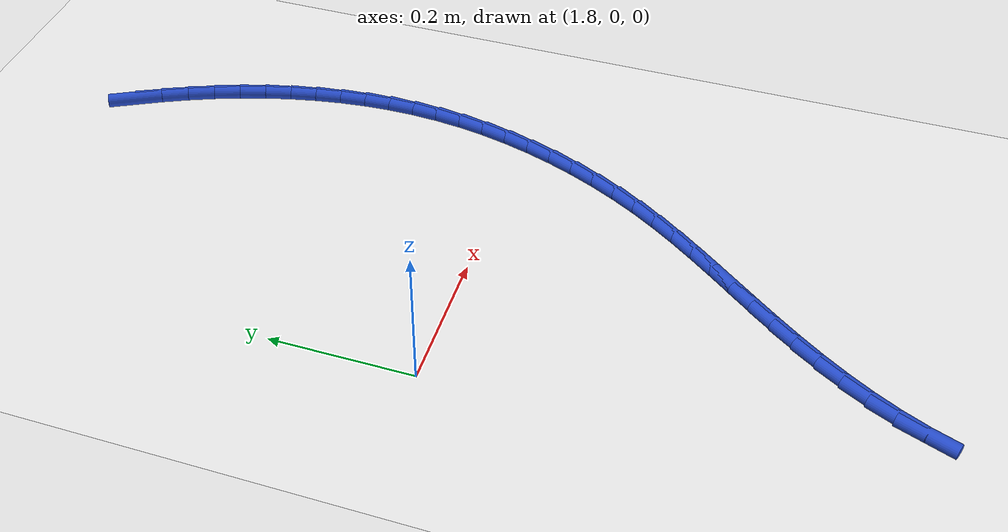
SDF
<sdf version="1.6">
 <world name="default">
  <model name="ground_plane">
   <static>1</static>
   <link name="link">
    <collision name="collision">
     <geometry><plane><normal>0 0 1</normal><size>100 100</size></plane></geometry>
     <surface><friction><ode><mu>100</mu><mu2>50</mu2></ode></friction></surface>
    </collision>
    <visual name="visual">
     <cast_shadows>0</cast_shadows>
     <geometry><plane><normal>0 0 1</normal><size>100 100</size></plane></geometry>
     <material>
      <script><uri>file://media/materials/scripts/gazebo.material</uri><name>Gazebo/WhiteGlow</name></script>
     </material>
    </visual>
   </link>
  </model>
  <model name="line">
   <link name="link_87">
    <pose>2.1810472128104976 0.5929983881693672 0.01 0 1.57 -1.0964774613590542</pose>
    <collision name="collision">
     <geometry><cylinder><radius>0.01</radius><length>0.08</length></cylinder></geometry>
    </collision>
    <visual name="visual">
     <material>
      <script><name>Gazebo/Blue</name><uri>file://media/materials/scripts/gazebo.material</uri></script>
     </material>
     <geometry><cylinder><radius>0.01</radius><length>0.08</length></cylinder></geometry>
    </visual>
   </link>
   <link name="link_88">
    <pose>2.1992756801586504 0.5574937680824794 0.01 0 1.57 -1.1358468316778234</pose>
    <collision name="collision">
     <geometry><cylinder><radius>0.01</radius><length>0.08</length></cylinder></geometry>
    </collision>
    <visual name="visual">
     <material>
      <script><name>Gazebo/Blue</name><uri>file://media/materials/scripts/gazebo.material</uri></script>
     </material>
     <geometry><cylinder><radius>0.01</radius><length>0.08</length></cylinder></geometry>
    </visual>
   </link>
   <link name="link_89">
    <pose>2.2160421275503537 0.5214078090334238 0.01 0 1.57 -1.1766800010157241</pose>
    <collision name="collision">
     <geometry><cylinder><radius>0.01</radius><length>0.08</length></cylinder></geometry>
    </collision>
    <visual name="visual">
     <material>
      <script><name>Gazebo/Blue</name><uri>file://media/materials/scripts/gazebo.material</uri></script>
     </material>
     <geometry><cylinder><radius>0.01</radius><length>0.08</length></cylinder></geometry>
    </visual>
   </link>
   <link name="link_90">
    <pose>2.2312671188734567 0.48479826676409077 0.01 0 1.57 -1.2191186255877215</pose>
    <collision name="collision">
     <geometry><cylinder><radius>0.01</radius><length>0.08</length></cylinder></geometry>
    </collision>
    <visual name="visual">
     <material>
      <script><name>Gazebo/Blue</name><uri>file://media/materials/scripts/gazebo.material</uri></script>
     </material>
     <geometry><cylinder><radius>0.01</radius><length>0.08</length></cylinder></geometry>
    </visual>
   </link>
   <link name="link_91">
    <pose>2.244871218015808 0.44772289701637225 0.01 0 1.57 -1.2632954759078336</pose>
    <collision name="collision">
     <geometry><cylinder><radius>0.01</radius><length>0.08</length></cylinder></geometry>
    </collision>
    <visual name="visual">
     <material>
      <script><name>Gazebo/Blue</name><uri>file://media/materials/scripts/gazebo.material</uri></script>
     </material>
     <geometry><cylinder><radius>0.01</radius><length>0.08</length></cylinder></geometry>
    </visual>
   </link>
   <link name="link_92">
    <pose>2.256774988865257 0.41023945553215907 0.01 0 1.57 -1.3093303420247384</pose>
    <collision name="collision">
     <geometry><cylinder><radius>0.01</radius><length>0.08</length></cylinder></geometry>
    </collision>
    <visual name="visual">
     <material>
      <script><name>Gazebo/Blue</name><uri>file://media/materials/scripts/gazebo.material</uri></script>
     </material>
     <geometry><cylinder><radius>0.01</radius><length>0.08</length></cylinder></geometry>
    </visual>
   </link>
   <link name="link_93">
    <pose>2.2668989953096497 0.37240569805334317 0.01 0 1.57 -1.3573248775842262</pose>
    <collision name="collision">
     <geometry><cylinder><radius>0.01</radius><length>0.08</length></cylinder></geometry>
    </collision>
    <visual name="visual">
     <material>
      <script><name>Gazebo/Blue</name><uri>file://media/materials/scripts/gazebo.material</uri></script>
     </material>
     <geometry><cylinder><radius>0.01</radius><length>0.08</length></cylinder></geometry>
    </visual>
   </link>
   <link name="link_94">
    <pose>2.2751638012368374 0.33427938032181564 0.01 0 1.57 -1.4073563943673635</pose>
    <collision name="collision">
     <geometry><cylinder><radius>0.01</radius><length>0.08</length></cylinder></geometry>
    </collision>
    <visual name="visual">
     <material>
      <script><name>Gazebo/Blue</name><uri>file://media/materials/scripts/gazebo.material</uri></script>
     </material>
     <geometry><cylinder><radius>0.01</radius><length>0.08</length></cylinder></geometry>
    </visual>
   </link>
   <link name="link_95">
    <pose>2.281489970534668 0.29591825807946753 0.01 0 1.57 -1.4594707392036435</pose>
    <collision name="collision">
     <geometry><cylinder><radius>0.01</radius><length>0.08</length></cylinder></geometry>
    </collision>
    <visual name="visual">
     <material>
      <script><name>Gazebo/Blue</name><uri>file://media/materials/scripts/gazebo.material</uri></script>
     </material>
     <geometry><cylinder><radius>0.01</radius><length>0.08</length></cylinder></geometry>
    </visual>
   </link>
   <link name="link_96">
    <pose>2.28579806709099 0.25738008706819077 0.01 0 1.57 -1.513674554122117</pose>
    <collision name="collision">
     <geometry><cylinder><radius>0.01</radius><length>0.08</length></cylinder></geometry>
    </collision>
    <visual name="visual">
     <material>
      <script><name>Gazebo/Blue</name><uri>file://media/materials/scripts/gazebo.material</uri></script>
     </material>
     <geometry><cylinder><radius>0.01</radius><length>0.08</length></cylinder></geometry>
    </visual>
   </link>
   <link name="link_97">
    <pose>2.2880086547936527 0.21872262302987655 0.01 0 1.57 -1.5699274322667804</pose>
    <collision name="collision">
     <geometry><cylinder><radius>0.01</radius><length>0.08</length></cylinder></geometry>
    </collision>
    <visual name="visual">
     <material>
      <script><name>Gazebo/Blue</name><uri>file://media/materials/scripts/gazebo.material</uri></script>
     </material>
     <geometry><cylinder><radius>0.01</radius><length>0.08</length></cylinder></geometry>
    </visual>
   </link>
   <link name="link_98">
    <pose>2.2880422975305033 0.18000362170641565 0.01 0 1.57 1.513608441366449</pose>
    <collision name="collision">
     <geometry><cylinder><radius>0.01</radius><length>0.08</length></cylinder></geometry>
    </collision>
    <visual name="visual">
     <material>
      <script><name>Gazebo/Blue</name><uri>file://media/materials/scripts/gazebo.material</uri></script>
     </material>
     <geometry><cylinder><radius>0.01</radius><length>0.08</length></cylinder></geometry>
    </visual>
   </link>
   <link name="link_99">
    <pose>2.285825519514902 0.141282818370826 0.01 0 1.57 1.4560558930298946</pose>
    <collision name="collision">
     <geometry><cylinder><radius>0.01</radius><length>0.08</length></cylinder></geometry>
    </collision>
    <visual name="visual">
     <material>
      <script><name>Gazebo/Blue</name><uri>file://media/materials/scripts/gazebo.material</uri></script>
     </material>
     <geometry><cylinder><radius>0.01</radius><length>0.08</length></cylinder></geometry>
    </visual>
   </link>
   <link name="link_100">
    <pose>2.281373133192202 0.10264927040327847 0.01 0 1.57 1.400592252242638</pose>
    <collision name="collision">
     <geometry><cylinder><radius>0.01</radius><length>0.08</length></cylinder></geometry>
    </collision>
    <visual name="visual">
     <material>
      <script><name>Gazebo/Blue</name><uri>file://media/materials/scripts/gazebo.material</uri></script>
     </material>
     <geometry><cylinder><radius>0.01</radius><length>0.08</length></cylinder></geometry>
    </visual>
   </link>
   <link name="link_101">
    <pose>2.2747674601529386 0.06421445618325564 0.01 0 1.57 1.3470609814321004</pose>
    <collision name="collision">
     <geometry><cylinder><radius>0.01</radius><length>0.08</length></cylinder></geometry>
    </collision>
    <visual name="visual">
     <material>
      <script><name>Gazebo/Blue</name><uri>file://media/materials/scripts/gazebo.material</uri></script>
     </material>
     <geometry><cylinder><radius>0.01</radius><length>0.08</length></cylinder></geometry>
    </visual>
   </link>
   <link name="link_102">
    <pose>2.2660925324606254 0.02609042216903168 0.01 0 1.57 1.295236085773746</pose>
    <collision name="collision">
     <geometry><cylinder><radius>0.01</radius><length>0.08</length></cylinder></geometry>
    </collision>
    <visual name="visual">
     <material>
      <script><name>Gazebo/Blue</name><uri>file://media/materials/scripts/gazebo.material</uri></script>
     </material>
     <geometry><cylinder><radius>0.01</radius><length>0.08</length></cylinder></geometry>
    </visual>
   </link>
   <link name="link_103">
    <pose>2.2554323821787774 -0.011610785181120464 0.01 0 1.57 1.2448729225056592</pose>
    <collision name="collision">
     <geometry><cylinder><radius>0.01</radius><length>0.08</length></cylinder></geometry>
    </collision>
    <visual name="visual">
     <material>
      <script><name>Gazebo/Blue</name><uri>file://media/materials/scripts/gazebo.material</uri></script>
     </material>
     <geometry><cylinder><radius>0.01</radius><length>0.08</length></cylinder></geometry>
    </visual>
   </link>
   <link name="link_104">
    <pose>2.24287104137091 -0.04877711940892762 0.01 0 1.57 1.1957136526302299</pose>
    <collision name="collision">
     <geometry><cylinder><radius>0.01</radius><length>0.08</length></cylinder></geometry>
    </collision>
    <visual name="visual">
     <material>
      <script><name>Gazebo/Blue</name><uri>file://media/materials/scripts/gazebo.material</uri></script>
     </material>
     <geometry><cylinder><radius>0.01</radius><length>0.08</length></cylinder></geometry>
    </visual>
   </link>
   <link name="link_105">
    <pose>2.228492542100537 -0.08529653405611641 0.01 0 1.57 1.1474907966827188</pose>
    <collision name="collision">
     <geometry><cylinder><radius>0.01</radius><length>0.08</length></cylinder></geometry>
    </collision>
    <visual name="visual">
     <material>
      <script><name>Gazebo/Blue</name><uri>file://media/materials/scripts/gazebo.material</uri></script>
     </material>
     <geometry><cylinder><radius>0.01</radius><length>0.08</length></cylinder></geometry>
    </visual>
   </link>
   <link name="link_106">
    <pose>2.2123809164311727 -0.12105698266441442 0.01 0 1.57 1.0999292082882837</pose>
    <collision name="collision">
     <geometry><cylinder><radius>0.01</radius><length>0.08</length></cylinder></geometry>
    </collision>
    <visual name="visual">
     <material>
      <script><name>Gazebo/Blue</name><uri>file://media/materials/scripts/gazebo.material</uri></script>
     </material>
     <geometry><cylinder><radius>0.01</radius><length>0.08</length></cylinder></geometry>
    </visual>
   </link>
   <link name="link_107">
    <pose>2.1946201964263325 -0.15594641877554666 0.01 0 1.57 1.0527467801412542</pose>
    <collision name="collision">
     <geometry><cylinder><radius>0.01</radius><length>0.08</length></cylinder></geometry>
    </collision>
    <visual name="visual">
     <material>
      <script><name>Gazebo/Blue</name><uri>file://media/materials/scripts/gazebo.material</uri></script>
     </material>
     <geometry><cylinder><radius>0.01</radius><length>0.08</length></cylinder></geometry>
    </visual>
   </link>
   <link name="link_108">
    <pose>2.1752944141495316 -0.18985279593124071 0.01 0 1.57 1.0059850014443728</pose>
    <collision name="collision">
     <geometry><cylinder><radius>0.01</radius><length>0.08</length></cylinder></geometry>
    </collision>
    <visual name="visual">
     <material>
      <script><name>Gazebo/Blue</name><uri>file://media/materials/scripts/gazebo.material</uri></script>
     </material>
     <geometry><cylinder><radius>0.01</radius><length>0.08</length></cylinder></geometry>
    </visual>
   </link>
   <link name="link_109">
    <pose>2.154495140496297 -0.2226761838788385 0.01 0 1.57 0.9646499135408366</pose>
    <collision name="collision">
     <geometry><cylinder><radius>0.01</radius><length>0.08</length></cylinder></geometry>
    </collision>
    <visual name="visual">
     <material>
      <script><name>Gazebo/Blue</name><uri>file://media/materials/scripts/gazebo.material</uri></script>
     </material>
     <geometry><cylinder><radius>0.01</radius><length>0.08</length></cylinder></geometry>
    </visual>
   </link>
   <link name="link_110">
    <pose>2.132431291225114 -0.2545052458354685 0.01 0 1.57 0.933035600431134</pose>
    <collision name="collision">
     <geometry><cylinder><radius>0.01</radius><length>0.08</length></cylinder></geometry>
    </collision>
    <visual name="visual">
     <material>
      <script><name>Gazebo/Blue</name><uri>file://media/materials/scripts/gazebo.material</uri></script>
     </material>
     <geometry><cylinder><radius>0.01</radius><length>0.08</length></cylinder></geometry>
    </visual>
   </link>
   <link name="link_111">
    <pose>2.1094044950416353 -0.2855776507434266 0.01 0 1.57 0.9114138285483057</pose>
    <collision name="collision">
     <geometry><cylinder><radius>0.01</radius><length>0.08</length></cylinder></geometry>
    </collision>
    <visual name="visual">
     <material>
      <script><name>Gazebo/Blue</name><uri>file://media/materials/scripts/gazebo.material</uri></script>
     </material>
     <geometry><cylinder><radius>0.01</radius><length>0.08</length></cylinder></geometry>
    </visual>
   </link>
   <link name="link_112">
    <pose>2.0857189072144893 -0.31613512816826106 0.01 0 1.57 0.8998359156524256</pose>
    <collision name="collision">
     <geometry><cylinder><radius>0.01</radius><length>0.08</length></cylinder></geometry>
    </collision>
    <visual name="visual">
     <material>
      <script><name>Gazebo/Blue</name><uri>file://media/materials/scripts/gazebo.material</uri></script>
     </material>
     <geometry><cylinder><radius>0.01</radius><length>0.08</length></cylinder></geometry>
    </visual>
   </link>
   <link name="link_113">
    <pose>2.0616786830123077 -0.3464194076755181 0.01 0 1.57 0.89830763255702</pose>
    <collision name="collision">
     <geometry><cylinder><radius>0.01</radius><length>0.08</length></cylinder></geometry>
    </collision>
    <visual name="visual">
     <material>
      <script><name>Gazebo/Blue</name><uri>file://media/materials/scripts/gazebo.material</uri></script>
     </material>
     <geometry><cylinder><radius>0.01</radius><length>0.08</length></cylinder></geometry>
    </visual>
   </link>
   <link name="link_114">
    <pose>2.037587977703721 -0.3766722188307459 0.01 0 1.57 0.9068241526346419</pose>
    <collision name="collision">
     <geometry><cylinder><radius>0.01</radius><length>0.08</length></cylinder></geometry>
    </collision>
    <visual name="visual">
     <material>
      <script><name>Gazebo/Blue</name><uri>file://media/materials/scripts/gazebo.material</uri></script>
     </material>
     <geometry><cylinder><radius>0.01</radius><length>0.08</length></cylinder></geometry>
    </visual>
   </link>
   <link name="link_115">
    <pose>2.0137509465573578 -0.40713529119949227 0.01 0 1.57 0.9253746956452095</pose>
    <collision name="collision">
     <geometry><cylinder><radius>0.01</radius><length>0.08</length></cylinder></geometry>
    </collision>
    <visual name="visual">
     <material>
      <script><name>Gazebo/Blue</name><uri>file://media/materials/scripts/gazebo.material</uri></script>
     </material>
     <geometry><cylinder><radius>0.01</radius><length>0.08</length></cylinder></geometry>
    </visual>
   </link>
   <link name="link_116">
    <pose>1.99047174484185 -0.43805035434730466 0.01 0 1.57 0.9537370815956082</pose>
    <collision name="collision">
     <geometry><cylinder><radius>0.01</radius><length>0.08</length></cylinder></geometry>
    </collision>
    <visual name="visual">
     <material>
      <script><name>Gazebo/Blue</name><uri>file://media/materials/scripts/gazebo.material</uri></script>
     </material>
     <geometry><cylinder><radius>0.01</radius><length>0.08</length></cylinder></geometry>
    </visual>
   </link>
   <link name="link_117">
    <pose>1.9680544619722635 -0.46964718973421626 0.01 0 1.57 0.9903826337144539</pose>
    <collision name="collision">
     <geometry><cylinder><radius>0.01</radius><length>0.08</length></cylinder></geometry>
    </collision>
    <visual name="visual">
     <material>
      <script><name>Gazebo/Blue</name><uri>file://media/materials/scripts/gazebo.material</uri></script>
     </material>
     <geometry><cylinder><radius>0.01</radius><length>0.08</length></cylinder></geometry>
    </visual>
   </link>
   <link name="link_118">
    <pose>1.946802633737421 -0.5020551319443873 0.01 0 1.57 1.0347109076377992</pose>
    <collision name="collision">
     <geometry><cylinder><radius>0.01</radius><length>0.08</length></cylinder></geometry>
    </collision>
    <visual name="visual">
     <material>
      <script><name>Gazebo/Blue</name><uri>file://media/materials/scripts/gazebo.material</uri></script>
     </material>
     <geometry><cylinder><radius>0.01</radius><length>0.08</length></cylinder></geometry>
    </visual>
   </link>
   <link name="link_119">
    <pose>1.9270195189447343 -0.5353532615906709 0.01 0 1.57 1.0868700130103006</pose>
    <collision name="collision">
     <geometry><cylinder><radius>0.01</radius><length>0.08</length></cylinder></geometry>
    </collision>
    <visual name="visual">
     <material>
      <script><name>Gazebo/Blue</name><uri>file://media/materials/scripts/gazebo.material</uri></script>
     </material>
     <geometry><cylinder><radius>0.01</radius><length>0.08</length></cylinder></geometry>
    </visual>
   </link>
   <link name="link_120">
    <pose>1.909008374342913 -0.5696202857659196 0.01 0 1.57 1.1468988508354667</pose>
    <collision name="collision">
     <geometry><cylinder><radius>0.01</radius><length>0.08</length></cylinder></geometry>
    </collision>
    <visual name="visual">
     <material>
      <script><name>Gazebo/Blue</name><uri>file://media/materials/scripts/gazebo.material</uri></script>
     </material>
     <geometry><cylinder><radius>0.01</radius><length>0.08</length></cylinder></geometry>
    </visual>
   </link>
   <link name="link_121">
    <pose>1.8930724566806647 -0.6049349115629887 0.01 0 1.57 1.2146244836668725</pose>
    <collision name="collision">
     <geometry><cylinder><radius>0.01</radius><length>0.08</length></cylinder></geometry>
    </collision>
    <visual name="visual">
     <material>
      <script><name>Gazebo/Blue</name><uri>file://media/materials/scripts/gazebo.material</uri></script>
     </material>
     <geometry><cylinder><radius>0.01</radius><length>0.08</length></cylinder></geometry>
    </visual>
   </link>
  </model>
 </world>
</sdf>
